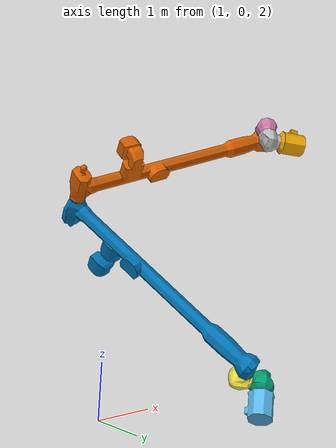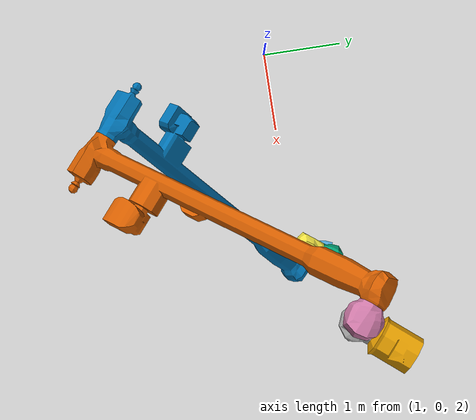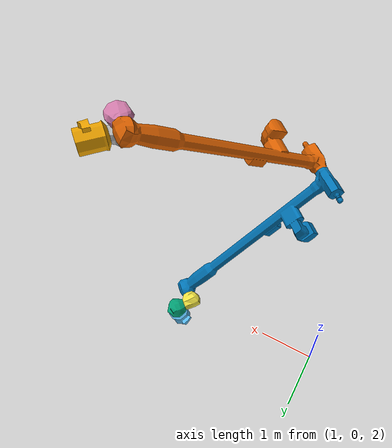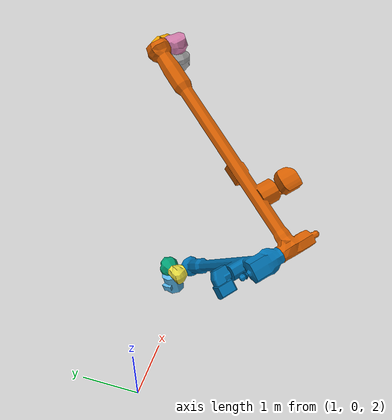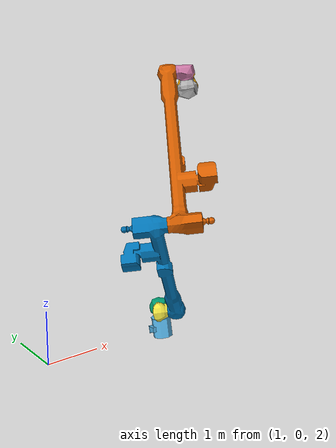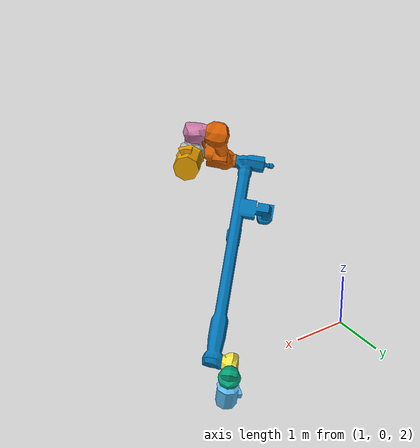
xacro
<?xml version="1.0"?>
<robot xmlns:xacro="http://ros.org/wiki/xacro" name="big_arm">

  <xacro:include filename="$(find gateway_description)/xacro/big_arm_macro.xacro"/>

  <xacro:big_arm>  <!-- parent="gateway_body/root"-->
    <origin xyz="0.0 0.0 0.0" rpy="0.0 0.4363 -1.396"/>
  </xacro:big_arm>

  <link name="big_arm_link_tcp"/>

  <joint name="big_arm_tcp_joint" type="fixed">
    <parent link="big_arm_link_8"/>
    <child link="big_arm_link_tcp"/>
    <origin xyz="0 0 0" rpy="0 0 0"/>
  </joint>

</robot>

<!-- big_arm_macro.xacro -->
<robot xmlns:xacro="http://ros.org/wiki/xacro" name="big_arm">

  <!-- BIG ARM -->
  <xacro:macro name="big_arm" params=" *origin "> <!-- parent:=''-->

  <link name="big_arm_link_0"/>

  <link name="big_arm_link_1">
    <visual>
      <geometry>
        <mesh filename="package://gateway_description/meshes/big_arm/big_arm_link_1.dae" scale="1.0 1.0 1.0"/>
      </geometry>
    </visual>
    <collision>
      <geometry>
        <mesh filename="package://gateway_description/meshes/big_arm/big_arm_link_1.dae" scale="1.0 1.0 1.0"/>
      </geometry>
    </collision>
  </link>

  <link name="big_arm_link_2">
    <visual>
      <geometry>
        <mesh filename="package://gateway_description/meshes/big_arm/big_arm_link_2.dae" scale="1.0 1.0 1.0"/>
      </geometry>
    </visual>
    <collision>
      <geometry>
        <mesh filename="package://gateway_description/meshes/big_arm/big_arm_link_2.dae" scale="1.0 1.0 1.0"/>
      </geometry>
    </collision>
  </link>

  <link name="big_arm_link_3">
    <visual>
      <geometry>
        <mesh filename="package://gateway_description/meshes/big_arm/big_arm_link_3.dae" scale="1.0 1.0 1.0"/>
      </geometry>
    </visual>
    <collision>
      <geometry>
        <mesh filename="package://gateway_description/meshes/big_arm/big_arm_link_3.dae" scale="1.0 1.0 1.0"/>
      </geometry>
    </collision>
  </link>

  <link name="big_arm_link_4">
    <visual>
      <geometry>
        <mesh filename="package://gateway_description/meshes/big_arm/big_arm_link_4.dae" scale="1.0 1.0 1.0"/>
      </geometry>
    </visual>
    <collision>
      <geometry>
        <mesh filename="package://gateway_description/meshes/big_arm/big_arm_link_4.dae" scale="1.0 1.0 1.0"/>
      </geometry>
    </collision>
  </link>

  <link name="big_arm_link_5">
    <visual>
      <geometry>
        <mesh filename="package://gateway_description/meshes/big_arm/big_arm_link_5.dae" scale="1.0 1.0 1.0"/>
      </geometry>
    </visual>
    <collision>
      <geometry>
        <mesh filename="package://gateway_description/meshes/big_arm/big_arm_link_5.dae" scale="1.0 1.0 1.0"/>
      </geometry>
    </collision>
  </link>

  <link name="big_arm_link_6">
    <visual>
      <geometry>
        <mesh filename="package://gateway_description/meshes/big_arm/big_arm_link_6.dae" scale="1.0 1.0 1.0"/>
      </geometry>
    </visual>
    <collision>
      <geometry>
        <mesh filename="package://gateway_description/meshes/big_arm/big_arm_link_6.dae" scale="1.0 1.0 1.0"/>
      </geometry>
    </collision>
  </link>

  <link name="big_arm_link_7">
    <visual>
      <geometry>
        <mesh filename="package://gateway_description/meshes/big_arm/big_arm_link_7.dae" scale="1.0 1.0 1.0"/>
      </geometry>
    </visual>
    <collision>
      <geometry>
        <mesh filename="package://gateway_description/meshes/big_arm/big_arm_link_7.dae" scale="1.0 1.0 1.0"/>
      </geometry>
    </collision>
  </link>

  <link name="big_arm_link_8">
    <visual>
      <geometry>
        <mesh filename="package://gateway_description/meshes/big_arm/big_arm_link_8.dae" scale="1.0 1.0 1.0"/>
      </geometry>
    </visual>
    <collision>
      <geometry>
        <mesh filename="package://gateway_description/meshes/big_arm/big_arm_link_8.dae" scale="1.0 1.0 1.0"/>
      </geometry>
    </collision>
  </link>

  <joint name="big_arm_joint_1" type="fixed">
    <parent link="big_arm_link_0"/>
    <child link="big_arm_link_1"/>
    <origin xyz="3.7698 0.3139 1.6058" rpy="0.0 -0.2094 -1.5708"/>
  </joint>

  <joint name="big_arm_joint_2" type="revolute">
    <parent link="big_arm_link_1"/>
    <child link="big_arm_link_2"/>
    <axis xyz="0 0 1"/>
    <limit lower="-3.14" upper="3.14" velocity="3.1416" effort="100"/> <!-- MADE UP NUMBERS JUST FOR TESTING -->
    <origin xyz="0.0 0.0 0.4409" rpy="0.0 0.0 0.8726648"/>
  </joint>

  <joint name="big_arm_joint_3" type="revolute">
    <parent link="big_arm_link_2"/>
    <child link="big_arm_link_3"/>
    <origin xyz="0.0 -0.177 0.1515" rpy="2.98023e-8 0.0  1.862645e-8"/>
    <axis xyz="0 1 0"/>
    <limit lower="-3.14" upper="3.14" velocity="3.1416" effort="100"/> <!-- MADE UP NUMBERS JUST FOR TESTING -->
  </joint>

  <joint name="big_arm_joint_4" type="revolute">
    <parent link="big_arm_link_3"/>
    <child link="big_arm_link_4"/>
    <origin xyz="0.17432 -0.1594 0.0" rpy="0.95993114 0.0 0.0"/>
    <axis xyz="1 0 0"/>
    <limit lower="-3.14" upper="3.14" velocity="3.1416" effort="100"/> <!-- MADE UP NUMBERS JUST FOR TESTING -->
  </joint>

  <joint name="big_arm_joint_5" type="revolute">
    <parent link="big_arm_link_4"/>
    <child link="big_arm_link_5"/>
    <origin xyz="0.3503 -0.004789 3.6578" rpy="1.3089968 0.0 0.0"/>
    <axis xyz="1 0 0"/>
    <limit lower="-3.14" upper="3.14" velocity="3.1416" effort="100"/> <!-- MADE UP NUMBERS JUST FOR TESTING -->
  </joint>

  <joint name="big_arm_joint_6" type="revolute">
    <parent link="big_arm_link_5"/>
    <child link="big_arm_link_6"/>
    <origin xyz="0.3503 0.004781 -3.6578" rpy="-0.5235989 0.0 0.0"/>
    <axis xyz="1 0 0"/>
    <limit lower="-3.14" upper="3.14" velocity="3.1416" effort="100"/> <!-- MADE UP NUMBERS JUST FOR TESTING -->
  </joint>

  <joint name="big_arm_joint_7" type="revolute">
    <parent link="big_arm_link_6"/>
    <child link="big_arm_link_7"/>
    <origin xyz="0.17429 -0.15194 0.0" rpy="0.0 0.0 0.0"/>
    <axis xyz="0 1 0"/>
    <limit lower="-3.14" upper="3.14" velocity="3.1416" effort="100"/> <!-- MADE UP NUMBERS JUST FOR TESTING -->
  </joint>

  <joint name="big_arm_joint_8" type="revolute">
    <parent link="big_arm_link_7"/>
    <child link="big_arm_link_8"/>
    <origin xyz="-0.004217 -0.1708 -0.181" rpy="0.0 0.0 0.0"/>
    <axis xyz="0 0 1"/>
    <limit lower="-3.14" upper="3.14" velocity="3.1416" effort="100"/> <!-- MADE UP NUMBERS JUST FOR TESTING -->
  </joint>

  </xacro:macro>

</robot>
